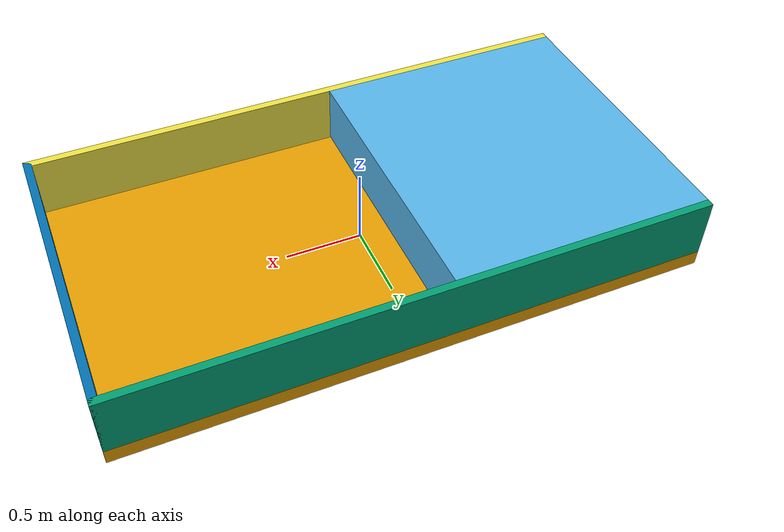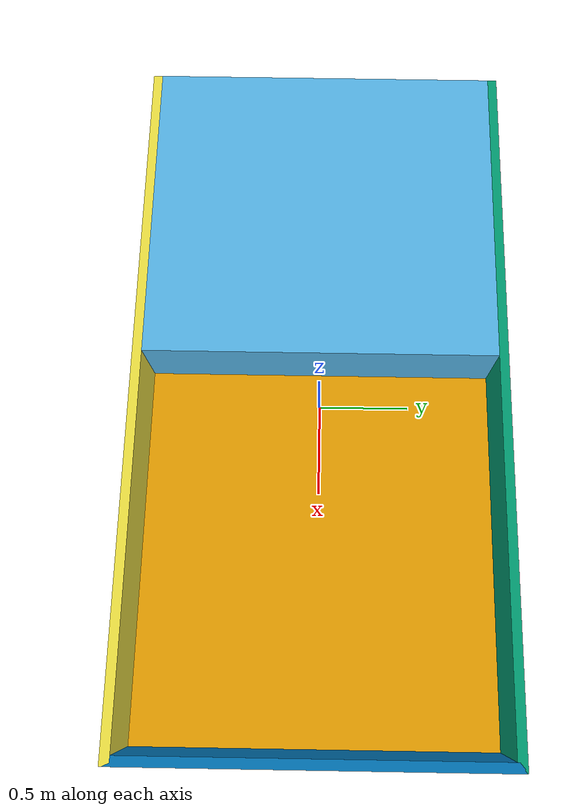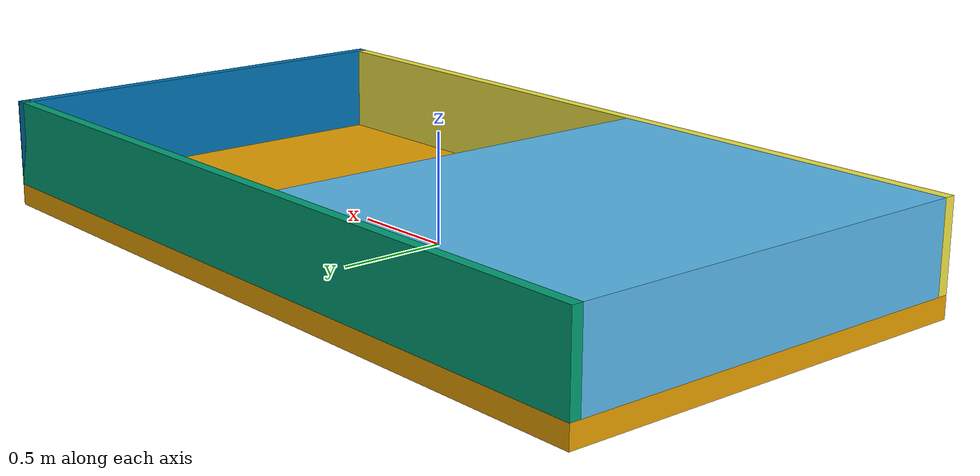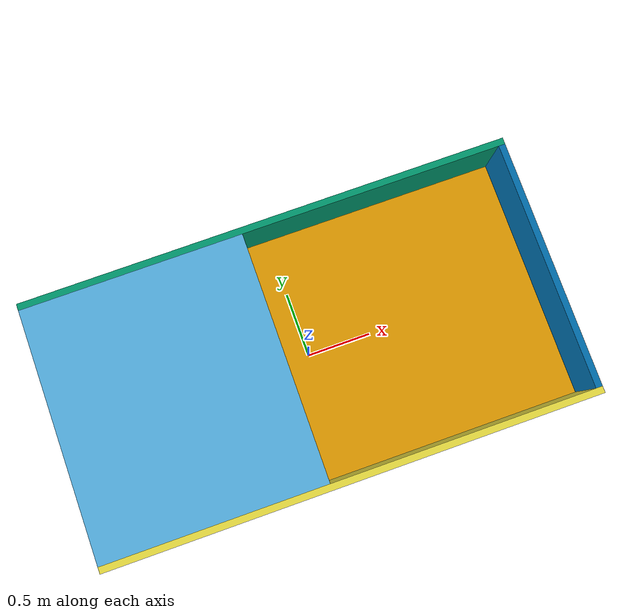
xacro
<?xml version="1.0"?>
<robot name="base" xmlns:xacro="http://ros.org/wiki/xacro">

  <xacro:macro name="base" params="base_name size_x size_y size_z">
    <link name="${base_name}">
      <visual>
        <geometry>
          <box size="${size_x} ${size_y} ${size_z}"/>
        </geometry>
	<origin rpy="0 0 0" xyz="0 0 0"/>
      </visual>
    </link>
  </xacro:macro>

  <xacro:base base_name="base1" size_x="3.75" size_y="2" size_z="0.1" />
  <xacro:base base_name="base2" size_x="1.7" size_y="1.9" size_z="0.4" />
  <xacro:base base_name="base3" size_x="3.75" size_y="0.05" size_z="0.4" />
  <xacro:base base_name="base4" size_x="3.75" size_y="0.05" size_z="0.4" />
  <xacro:base base_name="base5" size_x="0.05" size_y="2" size_z="0.4" />

  <xacro:macro name="base_joint" params="base_2 x y z">
    <joint name="base1_to_${base_2}" type="fixed">
      <parent link="base1"/>
      <child link="${base_2}"/>
      <origin xyz="${x} ${y} ${z}" />
    </joint>
  </xacro:macro>

  <xacro:base_joint base_2="base2" x="-1.025" y="0" z="0.25" />
  <xacro:base_joint base_2="base3" x="0" y="0.975" z="0.25" />
  <xacro:base_joint base_2="base4" x="0" y="-0.975" z="0.25" />
  <xacro:base_joint base_2="base5" x="1.85" y="0" z="0.25" />

</robot>
